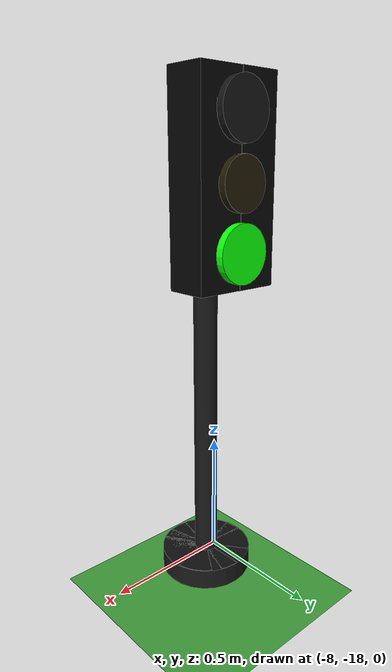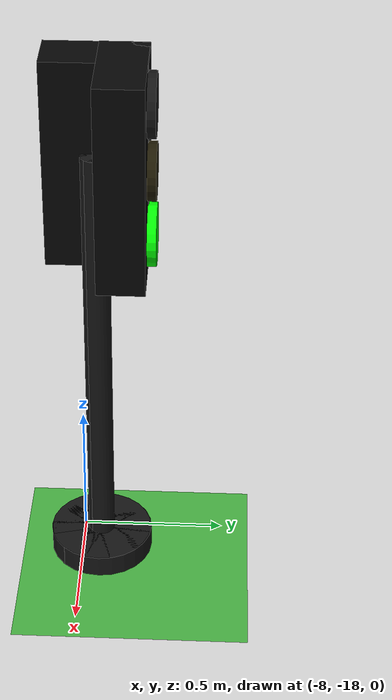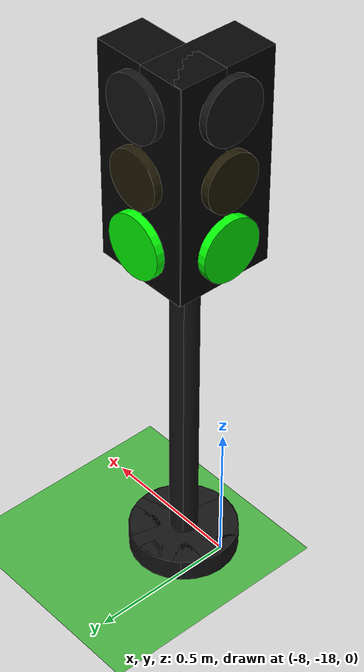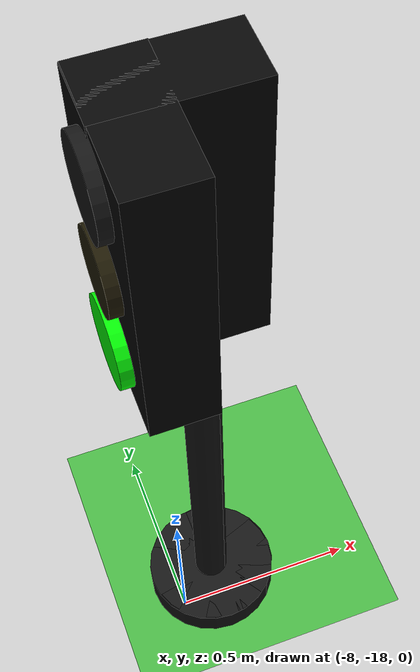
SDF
<sdf version="1.10">
 <world name="city_second">
  <model name="ground_plane">
   <static>true</static>
   <link name="link">
    <collision name="collision">
     <geometry><plane><normal>0 0 1</normal><size>300 300</size></plane></geometry>
    </collision>
    <visual name="visual">
     <geometry><plane><normal>0 0 1</normal><size>300 300</size></plane></geometry>
     <material>
      <ambient>0.280000001 0.689999998 0.25999999 1</ambient>
      <diffuse>0.280000001 0.689999998 0.25999999 1</diffuse>
      <specular>0.0299999993 0.0299999993 0.0299999993 1</specular>
     </material>
    </visual>
    <inertial>
     <mass>1</mass>
     <inertia><ixx>1</ixx><ixy>0</ixy><ixz>0</ixz><iyy>1</iyy><iyz>0</iyz><izz>1</izz></inertia>
    </inertial>
   </link>
  </model>
  <model name="simple_traffic_light_green_north_1_1">
   <static>true</static>
   <pose>-7.892690759823056 -17.934411539396873 0 0 0 0</pose>
   <link name="base">
    <pose>0 0 0.040000000000000001 0 0 0</pose>
    <collision name="collision">
     <geometry>
      <cylinder><radius>0.17999999999999999</radius><length>0.080000000000000002</length></cylinder>
     </geometry>
    </collision>
    <visual name="visual">
     <geometry>
      <cylinder><radius>0.17999999999999999</radius><length>0.080000000000000002</length></cylinder>
     </geometry>
     <material>
      <ambient>0.0799999982 0.0799999982 0.0799999982 1</ambient>
      <diffuse>0.0799999982 0.0799999982 0.0799999982 1</diffuse>
      <specular>0.150000006 0.150000006 0.150000006 1</specular>
      <emissive>0 0 0 1</emissive>
     </material>
    </visual>
    <inertial>
     <mass>1</mass>
     <inertia><ixx>1</ixx><ixy>0</ixy><ixz>0</ixz><iyy>1</iyy><iyz>0</iyz><izz>1</izz></inertia>
    </inertial>
   </link>
   <link name="pole">
    <pose>0 0 0.80000000000000004 0 0 0</pose>
    <collision name="collision">
     <geometry>
      <cylinder><radius>0.044999999999999998</radius><length>1.6000000000000001</length></cylinder>
     </geometry>
    </collision>
    <visual name="visual">
     <geometry>
      <cylinder><radius>0.044999999999999998</radius><length>1.6000000000000001</length></cylinder>
     </geometry>
     <material>
      <ambient>0.0799999982 0.0799999982 0.0799999982 1</ambient>
      <diffuse>0.0799999982 0.0799999982 0.0799999982 1</diffuse>
      <specular>0.150000006 0.150000006 0.150000006 1</specular>
      <emissive>0 0 0 1</emissive>
     </material>
    </visual>
    <inertial>
     <mass>1</mass>
     <inertia><ixx>1</ixx><ixy>0</ixy><ixz>0</ixz><iyy>1</iyy><iyz>0</iyz><izz>1</izz></inertia>
    </inertial>
   </link>
   <link name="signal_box">
    <pose>0 0.089999999999999858 1.55 0 0 0</pose>
    <collision name="collision">
     <geometry><box><size>0.34000000000000002 0.16 0.71999999999999997</size></box></geometry>
    </collision>
    <visual name="visual">
     <geometry><box><size>0.34000000000000002 0.16 0.71999999999999997</size></box></geometry>
     <material>
      <ambient>0.0199999996 0.0199999996 0.0199999996 1</ambient>
      <diffuse>0.0199999996 0.0199999996 0.0199999996 1</diffuse>
      <specular>0.150000006 0.150000006 0.150000006 1</specular>
      <emissive>0 0 0 1</emissive>
     </material>
    </visual>
    <inertial>
     <mass>1</mass>
     <inertia><ixx>1</ixx><ixy>0</ixy><ixz>0</ixz><iyy>1</iyy><iyz>0</iyz><izz>1</izz></inertia>
    </inertial>
   </link>
   <link name="red_lens">
    <pose>0 0.18100000000000094 1.78 1.5707963268000003 0 0</pose>
    <collision name="collision">
     <geometry><cylinder><radius>0.105</radius><length>0.035000000000000003</length></cylinder></geometry>
    </collision>
    <visual name="visual">
     <geometry><cylinder><radius>0.105</radius><length>0.035000000000000003</length></cylinder></geometry>
     <material>
      <ambient>0.0799999982 0.0799999982 0.0799999982 1</ambient>
      <diffuse>0.0799999982 0.0799999982 0.0799999982 1</diffuse>
      <specular>0.150000006 0.150000006 0.150000006 1</specular>
      <emissive>0 0 0 1</emissive>
     </material>
    </visual>
    <inertial>
     <mass>1</mass>
     <inertia><ixx>1</ixx><ixy>0</ixy><ixz>0</ixz><iyy>1</iyy><iyz>0</iyz><izz>1</izz></inertia>
    </inertial>
   </link>
   <link name="yellow_lens">
    <pose>0 0.18199999999999861 1.55 1.5707963268000003 0 0</pose>
    <collision name="collision">
     <geometry>
      <cylinder><radius>0.095000000000000001</radius><length>0.035000000000000003</length></cylinder>
     </geometry>
    </collision>
    <visual name="visual">
     <geometry>
      <cylinder><radius>0.095000000000000001</radius><length>0.035000000000000003</length></cylinder>
     </geometry>
     <material>
      <ambient>0.119999997 0.100000001 0.0199999996 1</ambient>
      <diffuse>0.119999997 0.100000001 0.0199999996 1</diffuse>
      <specular>0.150000006 0.150000006 0.150000006 1</specular>
      <emissive>0 0 0 1</emissive>
     </material>
    </visual>
    <inertial>
     <mass>1</mass>
     <inertia><ixx>1</ixx><ixy>0</ixy><ixz>0</ixz><iyy>1</iyy><iyz>0</iyz><izz>1</izz></inertia>
    </inertial>
   </link>
   <link name="green_lens">
    <pose>0 0.18299999999999983 1.3200000000000001 1.5707963268000003 0 0</pose>
    <collision name="collision">
     <geometry><cylinder><radius>0.105</radius><length>0.035000000000000003</length></cylinder></geometry>
    </collision>
    <visual name="visual">
     <geometry><cylinder><radius>0.105</radius><length>0.035000000000000003</length></cylinder></geometry>
     <material>
      <ambient>0.0199999996 1 0.0199999996 1</ambient>
      <diffuse>0.0199999996 1 0.0199999996 1</diffuse>
      <specular>0.150000006 0.150000006 0.150000006 1</specular>
      <emissive>0.0199999996 1 0.0199999996 1</emissive>
     </material>
    </visual>
    <inertial>
     <mass>1</mass>
     <inertia><ixx>1</ixx><ixy>0</ixy><ixz>0</ixz><iyy>1</iyy><iyz>0</iyz><izz>1</izz></inertia>
    </inertial>
   </link>
  </model>
  <model name="simple_traffic_light_green_west_1_1">
   <static>true</static>
   <pose>-7.8903706909818361 -17.93204356425986 -3.4694469519536142e-17 0 0 1.5707999672671753</pose>
   <link name="base">
    <pose>0 0 0.040000000000000001 0 0 0</pose>
    <collision name="collision">
     <geometry>
      <cylinder><radius>0.17999999999999999</radius><length>0.080000000000000002</length></cylinder>
     </geometry>
    </collision>
    <visual name="visual">
     <geometry>
      <cylinder><radius>0.17999999999999999</radius><length>0.080000000000000002</length></cylinder>
     </geometry>
     <material>
      <ambient>0.0799999982 0.0799999982 0.0799999982 1</ambient>
      <diffuse>0.0799999982 0.0799999982 0.0799999982 1</diffuse>
      <specular>0.150000006 0.150000006 0.150000006 1</specular>
      <emissive>0 0 0 1</emissive>
     </material>
    </visual>
    <inertial>
     <mass>1</mass>
     <inertia><ixx>1</ixx><ixy>0</ixy><ixz>0</ixz><iyy>1</iyy><iyz>0</iyz><izz>1</izz></inertia>
    </inertial>
   </link>
   <link name="pole">
    <pose>-1.7763568394002505e-14 2.2204460492503131e-14 0.80000000000000004 0 0 1.1102230246251565e-16</pose>
    <collision name="collision">
     <geometry>
      <cylinder><radius>0.044999999999999998</radius><length>1.6000000000000001</length></cylinder>
     </geometry>
    </collision>
    <visual name="visual">
     <geometry>
      <cylinder><radius>0.044999999999999998</radius><length>1.6000000000000001</length></cylinder>
     </geometry>
     <material>
      <ambient>0.0799999982 0.0799999982 0.0799999982 1</ambient>
      <diffuse>0.0799999982 0.0799999982 0.0799999982 1</diffuse>
      <specular>0.150000006 0.150000006 0.150000006 1</specular>
      <emissive>0 0 0 1</emissive>
     </material>
    </visual>
    <inertial>
     <mass>1</mass>
     <inertia><ixx>1</ixx><ixy>0</ixy><ixz>0</ixz><iyy>1</iyy><iyz>0</iyz><izz>1</izz></inertia>
    </inertial>
   </link>
   <link name="signal_box">
    <pose>1.0658141036401503e-14 0.09000000000001851 1.5500000000000003 0 0 1.1102230246251565e-16</pose>
    <collision name="collision">
     <geometry><box><size>0.34000000000000002 0.16 0.71999999999999997</size></box></geometry>
    </collision>
    <visual name="visual">
     <geometry><box><size>0.34000000000000002 0.16 0.71999999999999997</size></box></geometry>
     <material>
      <ambient>0.0199999996 0.0199999996 0.0199999996 1</ambient>
      <diffuse>0.0199999996 0.0199999996 0.0199999996 1</diffuse>
      <specular>0.150000006 0.150000006 0.150000006 1</specular>
      <emissive>0 0 0 1</emissive>
     </material>
    </visual>
    <inertial>
     <mass>1</mass>
     <inertia><ixx>1</ixx><ixy>0</ixy><ixz>0</ixz><iyy>1</iyy><iyz>0</iyz><izz>1</izz></inertia>
    </inertial>
   </link>
   <link name="red_lens">
    <pose>-2.8421709430404007e-14 0.18100000000001693 1.7800000000000002 1.5707963268000005 1.642723949032235e-26 -6.4373790806034792e-15</pose>
    <collision name="collision">
     <geometry><cylinder><radius>0.105</radius><length>0.035000000000000003</length></cylinder></geometry>
    </collision>
    <visual name="visual">
     <geometry><cylinder><radius>0.105</radius><length>0.035000000000000003</length></cylinder></geometry>
     <material>
      <ambient>0.0799999982 0.0799999982 0.0799999982 1</ambient>
      <diffuse>0.0799999982 0.0799999982 0.0799999982 1</diffuse>
      <specular>0.150000006 0.150000006 0.150000006 1</specular>
      <emissive>0 0 0 1</emissive>
     </material>
    </visual>
    <inertial>
     <mass>1</mass>
     <inertia><ixx>1</ixx><ixy>0</ixy><ixz>0</ixz><iyy>1</iyy><iyz>0</iyz><izz>1</izz></inertia>
    </inertial>
   </link>
   <link name="yellow_lens">
    <pose>-1.7763568394002505e-14 0.18200000000001992 1.5500000000000003 1.5707963268000005 1.642723949032235e-26 -6.4373790806034792e-15</pose>
    <collision name="collision">
     <geometry>
      <cylinder><radius>0.095000000000000001</radius><length>0.035000000000000003</length></cylinder>
     </geometry>
    </collision>
    <visual name="visual">
     <geometry>
      <cylinder><radius>0.095000000000000001</radius><length>0.035000000000000003</length></cylinder>
     </geometry>
     <material>
      <ambient>0.119999997 0.100000001 0.0199999996 1</ambient>
      <diffuse>0.119999997 0.100000001 0.0199999996 1</diffuse>
      <specular>0.150000006 0.150000006 0.150000006 1</specular>
      <emissive>0 0 0 1</emissive>
     </material>
    </visual>
    <inertial>
     <mass>1</mass>
     <inertia><ixx>1</ixx><ixy>0</ixy><ixz>0</ixz><iyy>1</iyy><iyz>0</iyz><izz>1</izz></inertia>
    </inertial>
   </link>
   <link name="green_lens">
    <pose>-7.1054273576010019e-15 0.18300000000001404 1.3200000000000003 1.5707963268000005 1.642723949032235e-26 -6.4373790806034792e-15</pose>
    <collision name="collision">
     <geometry><cylinder><radius>0.105</radius><length>0.035000000000000003</length></cylinder></geometry>
    </collision>
    <visual name="visual">
     <geometry><cylinder><radius>0.105</radius><length>0.035000000000000003</length></cylinder></geometry>
     <material>
      <ambient>0.0199999996 1 0.0199999996 1</ambient>
      <diffuse>0.0199999996 1 0.0199999996 1</diffuse>
      <specular>0.150000006 0.150000006 0.150000006 1</specular>
      <emissive>0.0199999996 1 0.0199999996 1</emissive>
     </material>
    </visual>
    <inertial>
     <mass>1</mass>
     <inertia><ixx>1</ixx><ixy>0</ixy><ixz>0</ixz><iyy>1</iyy><iyz>0</iyz><izz>1</izz></inertia>
    </inertial>
   </link>
  </model>
 </world>
</sdf>
